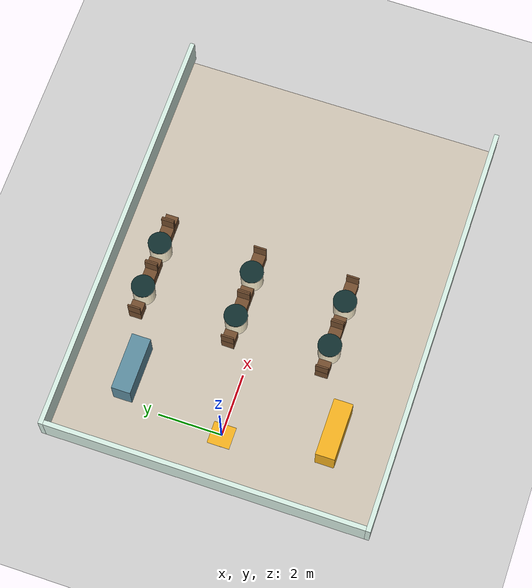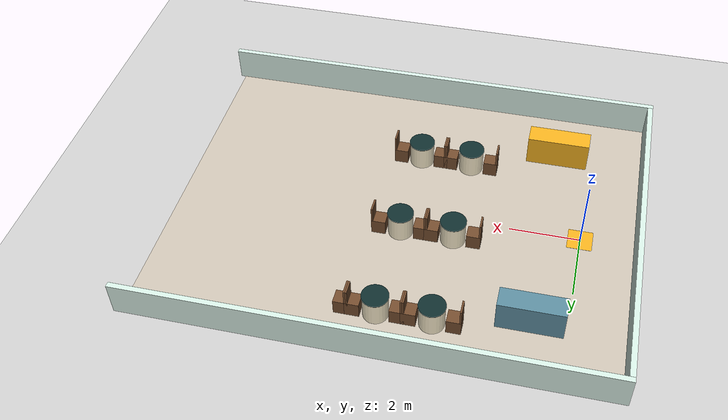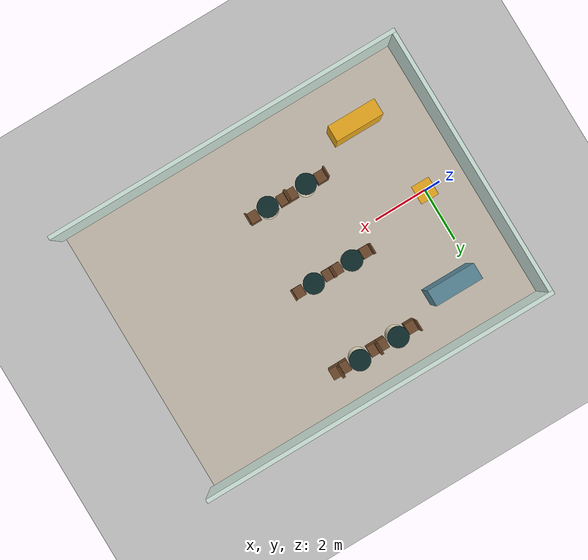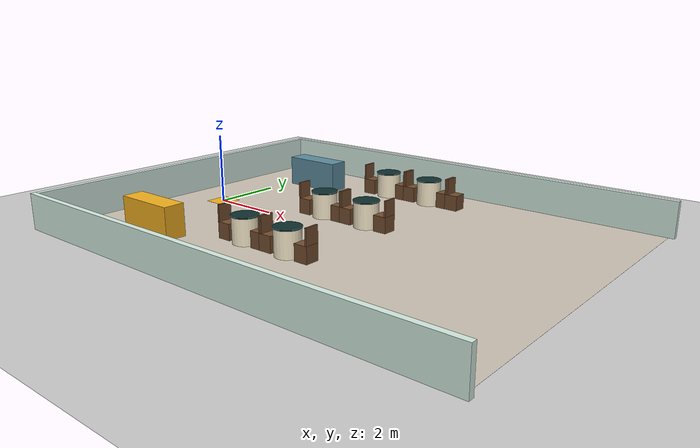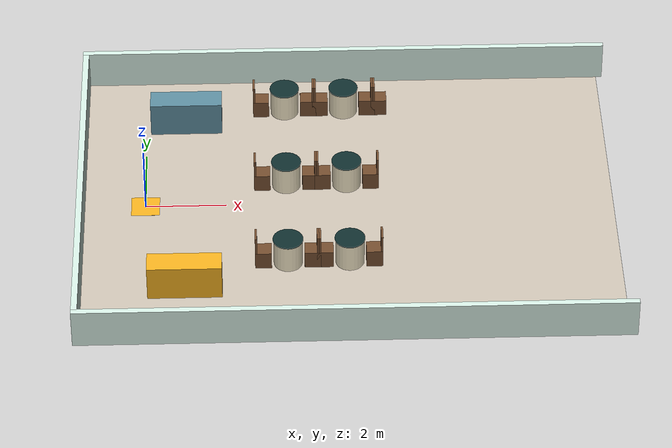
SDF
<sdf version="1.6">
 <world name="restaurante">
  <include><uri>model://sun</uri></include>
  <include><uri>model://ground_plane</uri></include>
  <model name="piso">
   <static>true</static>
   <pose>5.050 0.000 0.001 0 0 0</pose>
   <link name="link">
    <visual name="visual">
     <geometry><box><size>13.100 10.000 0.002</size></box></geometry>
     <material>
      <ambient>0.80 0.76 0.70 1</ambient>
      <diffuse>0.80 0.76 0.70 1</diffuse>
      <specular>0.1 0.1 0.1 1</specular>
     </material>
    </visual>
   </link>
  </model>
  <model name="parede_norte">
   <static>true</static>
   <pose>5.050 5.075 0 0 0 0.0000</pose>
   <link name="link">
    <collision name="colisao">
     <pose>0 0 0.500 0 0 0</pose>
     <geometry><box><size>13.400 0.150 1.000</size></box></geometry>
    </collision>
    <visual name="visual">
     <pose>0 0 0.500 0 0 0</pose>
     <geometry><box><size>13.400 0.150 1.000</size></box></geometry>
     <material>
      <ambient>0.84 0.93 0.89 1</ambient>
      <diffuse>0.84 0.93 0.89 1</diffuse>
      <specular>0.1 0.1 0.1 1</specular>
     </material>
    </visual>
   </link>
  </model>
  <model name="parede_sul">
   <static>true</static>
   <pose>5.050 -5.075 0 0 0 0.0000</pose>
   <link name="link">
    <collision name="colisao">
     <pose>0 0 0.500 0 0 0</pose>
     <geometry><box><size>13.400 0.150 1.000</size></box></geometry>
    </collision>
    <visual name="visual">
     <pose>0 0 0.500 0 0 0</pose>
     <geometry><box><size>13.400 0.150 1.000</size></box></geometry>
     <material>
      <ambient>0.84 0.93 0.89 1</ambient>
      <diffuse>0.84 0.93 0.89 1</diffuse>
      <specular>0.1 0.1 0.1 1</specular>
     </material>
    </visual>
   </link>
  </model>
  <model name="parede_oeste">
   <static>true</static>
   <pose>-1.575 0.000 0 0 0 0.0000</pose>
   <link name="link">
    <collision name="colisao">
     <pose>0 0 0.500 0 0 0</pose>
     <geometry><box><size>0.150 10.000 1.000</size></box></geometry>
    </collision>
    <visual name="visual">
     <pose>0 0 0.500 0 0 0</pose>
     <geometry><box><size>0.150 10.000 1.000</size></box></geometry>
     <material>
      <ambient>0.84 0.93 0.89 1</ambient>
      <diffuse>0.84 0.93 0.89 1</diffuse>
      <specular>0.1 0.1 0.1 1</specular>
     </material>
    </visual>
   </link>
  </model>
  <model name="mesa_1">
   <static>true</static>
   <pose>3.500 3.750 0 0 0 0</pose>
   <link name="link">
    <collision name="colisao">
     <pose>0 0 0.375 0 0 0</pose>
     <geometry><cylinder><radius>0.350</radius><length>0.750</length></cylinder></geometry>
    </collision>
    <visual name="toalha">
     <pose>0 0 0.360 0 0 0</pose>
     <geometry><cylinder><radius>0.350</radius><length>0.720</length></cylinder></geometry>
     <material>
      <ambient>0.99 0.94 0.81 1</ambient>
      <diffuse>0.99 0.94 0.81 1</diffuse>
      <specular>0.1 0.1 0.1 1</specular>
     </material>
    </visual>
    <visual name="tampo">
     <pose>0 0 0.735 0 0 0</pose>
     <geometry><cylinder><radius>0.370</radius><length>0.030</length></cylinder></geometry>
     <material>
      <ambient>0.06 0.18 0.18 1</ambient>
      <diffuse>0.06 0.18 0.18 1</diffuse>
      <specular>0.1 0.1 0.1 1</specular>
     </material>
    </visual>
   </link>
  </model>
  <model name="mesa_2">
   <static>true</static>
   <pose>5.000 3.750 0 0 0 0</pose>
   <link name="link">
    <collision name="colisao">
     <pose>0 0 0.375 0 0 0</pose>
     <geometry><cylinder><radius>0.350</radius><length>0.750</length></cylinder></geometry>
    </collision>
    <visual name="toalha">
     <pose>0 0 0.360 0 0 0</pose>
     <geometry><cylinder><radius>0.350</radius><length>0.720</length></cylinder></geometry>
     <material>
      <ambient>0.99 0.94 0.81 1</ambient>
      <diffuse>0.99 0.94 0.81 1</diffuse>
      <specular>0.1 0.1 0.1 1</specular>
     </material>
    </visual>
    <visual name="tampo">
     <pose>0 0 0.735 0 0 0</pose>
     <geometry><cylinder><radius>0.370</radius><length>0.030</length></cylinder></geometry>
     <material>
      <ambient>0.06 0.18 0.18 1</ambient>
      <diffuse>0.06 0.18 0.18 1</diffuse>
      <specular>0.1 0.1 0.1 1</specular>
     </material>
    </visual>
   </link>
  </model>
  <model name="mesa_6">
   <static>true</static>
   <pose>3.500 0.750 0 0 0 0</pose>
   <link name="link">
    <collision name="colisao">
     <pose>0 0 0.375 0 0 0</pose>
     <geometry><cylinder><radius>0.350</radius><length>0.750</length></cylinder></geometry>
    </collision>
    <visual name="toalha">
     <pose>0 0 0.360 0 0 0</pose>
     <geometry><cylinder><radius>0.350</radius><length>0.720</length></cylinder></geometry>
     <material>
      <ambient>0.99 0.94 0.81 1</ambient>
      <diffuse>0.99 0.94 0.81 1</diffuse>
      <specular>0.1 0.1 0.1 1</specular>
     </material>
    </visual>
    <visual name="tampo">
     <pose>0 0 0.735 0 0 0</pose>
     <geometry><cylinder><radius>0.370</radius><length>0.030</length></cylinder></geometry>
     <material>
      <ambient>0.06 0.18 0.18 1</ambient>
      <diffuse>0.06 0.18 0.18 1</diffuse>
      <specular>0.1 0.1 0.1 1</specular>
     </material>
    </visual>
   </link>
  </model>
  <model name="mesa_7">
   <static>true</static>
   <pose>5.000 0.750 0 0 0 0</pose>
   <link name="link">
    <collision name="colisao">
     <pose>0 0 0.375 0 0 0</pose>
     <geometry><cylinder><radius>0.350</radius><length>0.750</length></cylinder></geometry>
    </collision>
    <visual name="toalha">
     <pose>0 0 0.360 0 0 0</pose>
     <geometry><cylinder><radius>0.350</radius><length>0.720</length></cylinder></geometry>
     <material>
      <ambient>0.99 0.94 0.81 1</ambient>
      <diffuse>0.99 0.94 0.81 1</diffuse>
      <specular>0.1 0.1 0.1 1</specular>
     </material>
    </visual>
    <visual name="tampo">
     <pose>0 0 0.735 0 0 0</pose>
     <geometry><cylinder><radius>0.370</radius><length>0.030</length></cylinder></geometry>
     <material>
      <ambient>0.06 0.18 0.18 1</ambient>
      <diffuse>0.06 0.18 0.18 1</diffuse>
      <specular>0.1 0.1 0.1 1</specular>
     </material>
    </visual>
   </link>
  </model>
  <model name="mesa_11">
   <static>true</static>
   <pose>3.500 -2.250 0 0 0 0</pose>
   <link name="link">
    <collision name="colisao">
     <pose>0 0 0.375 0 0 0</pose>
     <geometry><cylinder><radius>0.350</radius><length>0.750</length></cylinder></geometry>
    </collision>
    <visual name="toalha">
     <pose>0 0 0.360 0 0 0</pose>
     <geometry><cylinder><radius>0.350</radius><length>0.720</length></cylinder></geometry>
     <material>
      <ambient>0.99 0.94 0.81 1</ambient>
      <diffuse>0.99 0.94 0.81 1</diffuse>
      <specular>0.1 0.1 0.1 1</specular>
     </material>
    </visual>
    <visual name="tampo">
     <pose>0 0 0.735 0 0 0</pose>
     <geometry><cylinder><radius>0.370</radius><length>0.030</length></cylinder></geometry>
     <material>
      <ambient>0.06 0.18 0.18 1</ambient>
      <diffuse>0.06 0.18 0.18 1</diffuse>
      <specular>0.1 0.1 0.1 1</specular>
     </material>
    </visual>
   </link>
  </model>
  <model name="mesa_12">
   <static>true</static>
   <pose>5.000 -2.250 0 0 0 0</pose>
   <link name="link">
    <collision name="colisao">
     <pose>0 0 0.375 0 0 0</pose>
     <geometry><cylinder><radius>0.350</radius><length>0.750</length></cylinder></geometry>
    </collision>
    <visual name="toalha">
     <pose>0 0 0.360 0 0 0</pose>
     <geometry><cylinder><radius>0.350</radius><length>0.720</length></cylinder></geometry>
     <material>
      <ambient>0.99 0.94 0.81 1</ambient>
      <diffuse>0.99 0.94 0.81 1</diffuse>
      <specular>0.1 0.1 0.1 1</specular>
     </material>
    </visual>
    <visual name="tampo">
     <pose>0 0 0.735 0 0 0</pose>
     <geometry><cylinder><radius>0.370</radius><length>0.030</length></cylinder></geometry>
     <material>
      <ambient>0.06 0.18 0.18 1</ambient>
      <diffuse>0.06 0.18 0.18 1</diffuse>
      <specular>0.1 0.1 0.1 1</specular>
     </material>
    </visual>
   </link>
  </model>
  <model name="cadeira_mesa_1_a">
   <static>true</static>
   <pose>2.900 3.750 0 0 0 0.0000</pose>
   <link name="link">
    <collision name="colisao">
     <pose>0 0 0.225 0 0 0</pose>
     <geometry><box><size>0.400 0.400 0.450</size></box></geometry>
    </collision>
    <visual name="assento">
     <pose>0 0 0.225 0 0 0</pose>
     <geometry><box><size>0.400 0.400 0.450</size></box></geometry>
     <material>
      <ambient>0.45 0.30 0.18 1</ambient>
      <diffuse>0.45 0.30 0.18 1</diffuse>
      <specular>0.1 0.1 0.1 1</specular>
     </material>
    </visual>
    <visual name="encosto">
     <pose>-0.175 0 0.675 0 0 0</pose>
     <geometry><box><size>0.050 0.400 0.450</size></box></geometry>
     <material>
      <ambient>0.45 0.30 0.18 1</ambient>
      <diffuse>0.45 0.30 0.18 1</diffuse>
      <specular>0.1 0.1 0.1 1</specular>
     </material>
    </visual>
   </link>
  </model>
  <model name="cadeira_mesa_1_b">
   <static>true</static>
   <pose>4.100 3.750 0 0 0 3.1416</pose>
   <link name="link">
    <collision name="colisao">
     <pose>0 0 0.225 0 0 0</pose>
     <geometry><box><size>0.400 0.400 0.450</size></box></geometry>
    </collision>
    <visual name="assento">
     <pose>0 0 0.225 0 0 0</pose>
     <geometry><box><size>0.400 0.400 0.450</size></box></geometry>
     <material>
      <ambient>0.45 0.30 0.18 1</ambient>
      <diffuse>0.45 0.30 0.18 1</diffuse>
      <specular>0.1 0.1 0.1 1</specular>
     </material>
    </visual>
    <visual name="encosto">
     <pose>-0.175 0 0.675 0 0 0</pose>
     <geometry><box><size>0.050 0.400 0.450</size></box></geometry>
     <material>
      <ambient>0.45 0.30 0.18 1</ambient>
      <diffuse>0.45 0.30 0.18 1</diffuse>
      <specular>0.1 0.1 0.1 1</specular>
     </material>
    </visual>
   </link>
  </model>
  <model name="cadeira_mesa_2_a">
   <static>true</static>
   <pose>4.400 3.750 0 0 0 0.0000</pose>
   <link name="link">
    <collision name="colisao">
     <pose>0 0 0.225 0 0 0</pose>
     <geometry><box><size>0.400 0.400 0.450</size></box></geometry>
    </collision>
    <visual name="assento">
     <pose>0 0 0.225 0 0 0</pose>
     <geometry><box><size>0.400 0.400 0.450</size></box></geometry>
     <material>
      <ambient>0.45 0.30 0.18 1</ambient>
      <diffuse>0.45 0.30 0.18 1</diffuse>
      <specular>0.1 0.1 0.1 1</specular>
     </material>
    </visual>
    <visual name="encosto">
     <pose>-0.175 0 0.675 0 0 0</pose>
     <geometry><box><size>0.050 0.400 0.450</size></box></geometry>
     <material>
      <ambient>0.45 0.30 0.18 1</ambient>
      <diffuse>0.45 0.30 0.18 1</diffuse>
      <specular>0.1 0.1 0.1 1</specular>
     </material>
    </visual>
   </link>
  </model>
  <model name="cadeira_mesa_2_b">
   <static>true</static>
   <pose>5.600 3.750 0 0 0 3.1416</pose>
   <link name="link">
    <collision name="colisao">
     <pose>0 0 0.225 0 0 0</pose>
     <geometry><box><size>0.400 0.400 0.450</size></box></geometry>
    </collision>
    <visual name="assento">
     <pose>0 0 0.225 0 0 0</pose>
     <geometry><box><size>0.400 0.400 0.450</size></box></geometry>
     <material>
      <ambient>0.45 0.30 0.18 1</ambient>
      <diffuse>0.45 0.30 0.18 1</diffuse>
      <specular>0.1 0.1 0.1 1</specular>
     </material>
    </visual>
    <visual name="encosto">
     <pose>-0.175 0 0.675 0 0 0</pose>
     <geometry><box><size>0.050 0.400 0.450</size></box></geometry>
     <material>
      <ambient>0.45 0.30 0.18 1</ambient>
      <diffuse>0.45 0.30 0.18 1</diffuse>
      <specular>0.1 0.1 0.1 1</specular>
     </material>
    </visual>
   </link>
  </model>
  <model name="cadeira_mesa_3_a">
   <static>true</static>
   <pose>5.900 3.750 0 0 0 0.0000</pose>
   <link name="link">
    <collision name="colisao">
     <pose>0 0 0.225 0 0 0</pose>
     <geometry><box><size>0.400 0.400 0.450</size></box></geometry>
    </collision>
    <visual name="assento">
     <pose>0 0 0.225 0 0 0</pose>
     <geometry><box><size>0.400 0.400 0.450</size></box></geometry>
     <material>
      <ambient>0.45 0.30 0.18 1</ambient>
      <diffuse>0.45 0.30 0.18 1</diffuse>
      <specular>0.1 0.1 0.1 1</specular>
     </material>
    </visual>
    <visual name="encosto">
     <pose>-0.175 0 0.675 0 0 0</pose>
     <geometry><box><size>0.050 0.400 0.450</size></box></geometry>
     <material>
      <ambient>0.45 0.30 0.18 1</ambient>
      <diffuse>0.45 0.30 0.18 1</diffuse>
      <specular>0.1 0.1 0.1 1</specular>
     </material>
    </visual>
   </link>
  </model>
  <model name="cadeira_mesa_6_a">
   <static>true</static>
   <pose>2.900 0.750 0 0 0 0.0000</pose>
   <link name="link">
    <collision name="colisao">
     <pose>0 0 0.225 0 0 0</pose>
     <geometry><box><size>0.400 0.400 0.450</size></box></geometry>
    </collision>
    <visual name="assento">
     <pose>0 0 0.225 0 0 0</pose>
     <geometry><box><size>0.400 0.400 0.450</size></box></geometry>
     <material>
      <ambient>0.45 0.30 0.18 1</ambient>
      <diffuse>0.45 0.30 0.18 1</diffuse>
      <specular>0.1 0.1 0.1 1</specular>
     </material>
    </visual>
    <visual name="encosto">
     <pose>-0.175 0 0.675 0 0 0</pose>
     <geometry><box><size>0.050 0.400 0.450</size></box></geometry>
     <material>
      <ambient>0.45 0.30 0.18 1</ambient>
      <diffuse>0.45 0.30 0.18 1</diffuse>
      <specular>0.1 0.1 0.1 1</specular>
     </material>
    </visual>
   </link>
  </model>
  <model name="cadeira_mesa_6_b">
   <static>true</static>
   <pose>4.100 0.750 0 0 0 3.1416</pose>
   <link name="link">
    <collision name="colisao">
     <pose>0 0 0.225 0 0 0</pose>
     <geometry><box><size>0.400 0.400 0.450</size></box></geometry>
    </collision>
    <visual name="assento">
     <pose>0 0 0.225 0 0 0</pose>
     <geometry><box><size>0.400 0.400 0.450</size></box></geometry>
     <material>
      <ambient>0.45 0.30 0.18 1</ambient>
      <diffuse>0.45 0.30 0.18 1</diffuse>
      <specular>0.1 0.1 0.1 1</specular>
     </material>
    </visual>
    <visual name="encosto">
     <pose>-0.175 0 0.675 0 0 0</pose>
     <geometry><box><size>0.050 0.400 0.450</size></box></geometry>
     <material>
      <ambient>0.45 0.30 0.18 1</ambient>
      <diffuse>0.45 0.30 0.18 1</diffuse>
      <specular>0.1 0.1 0.1 1</specular>
     </material>
    </visual>
   </link>
  </model>
  <model name="cadeira_mesa_7_a">
   <static>true</static>
   <pose>4.400 0.750 0 0 0 0.0000</pose>
   <link name="link">
    <collision name="colisao">
     <pose>0 0 0.225 0 0 0</pose>
     <geometry><box><size>0.400 0.400 0.450</size></box></geometry>
    </collision>
    <visual name="assento">
     <pose>0 0 0.225 0 0 0</pose>
     <geometry><box><size>0.400 0.400 0.450</size></box></geometry>
     <material>
      <ambient>0.45 0.30 0.18 1</ambient>
      <diffuse>0.45 0.30 0.18 1</diffuse>
      <specular>0.1 0.1 0.1 1</specular>
     </material>
    </visual>
    <visual name="encosto">
     <pose>-0.175 0 0.675 0 0 0</pose>
     <geometry><box><size>0.050 0.400 0.450</size></box></geometry>
     <material>
      <ambient>0.45 0.30 0.18 1</ambient>
      <diffuse>0.45 0.30 0.18 1</diffuse>
      <specular>0.1 0.1 0.1 1</specular>
     </material>
    </visual>
   </link>
  </model>
  <model name="cadeira_mesa_7_b">
   <static>true</static>
   <pose>5.600 0.750 0 0 0 3.1416</pose>
   <link name="link">
    <collision name="colisao">
     <pose>0 0 0.225 0 0 0</pose>
     <geometry><box><size>0.400 0.400 0.450</size></box></geometry>
    </collision>
    <visual name="assento">
     <pose>0 0 0.225 0 0 0</pose>
     <geometry><box><size>0.400 0.400 0.450</size></box></geometry>
     <material>
      <ambient>0.45 0.30 0.18 1</ambient>
      <diffuse>0.45 0.30 0.18 1</diffuse>
      <specular>0.1 0.1 0.1 1</specular>
     </material>
    </visual>
    <visual name="encosto">
     <pose>-0.175 0 0.675 0 0 0</pose>
     <geometry><box><size>0.050 0.400 0.450</size></box></geometry>
     <material>
      <ambient>0.45 0.30 0.18 1</ambient>
      <diffuse>0.45 0.30 0.18 1</diffuse>
      <specular>0.1 0.1 0.1 1</specular>
     </material>
    </visual>
   </link>
  </model>
  <model name="cadeira_mesa_11_a">
   <static>true</static>
   <pose>2.900 -2.250 0 0 0 0.0000</pose>
   <link name="link">
    <collision name="colisao">
     <pose>0 0 0.225 0 0 0</pose>
     <geometry><box><size>0.400 0.400 0.450</size></box></geometry>
    </collision>
    <visual name="assento">
     <pose>0 0 0.225 0 0 0</pose>
     <geometry><box><size>0.400 0.400 0.450</size></box></geometry>
     <material>
      <ambient>0.45 0.30 0.18 1</ambient>
      <diffuse>0.45 0.30 0.18 1</diffuse>
      <specular>0.1 0.1 0.1 1</specular>
     </material>
    </visual>
    <visual name="encosto">
     <pose>-0.175 0 0.675 0 0 0</pose>
     <geometry><box><size>0.050 0.400 0.450</size></box></geometry>
     <material>
      <ambient>0.45 0.30 0.18 1</ambient>
      <diffuse>0.45 0.30 0.18 1</diffuse>
      <specular>0.1 0.1 0.1 1</specular>
     </material>
    </visual>
   </link>
  </model>
  <model name="cadeira_mesa_11_b">
   <static>true</static>
   <pose>4.100 -2.250 0 0 0 3.1416</pose>
   <link name="link">
    <collision name="colisao">
     <pose>0 0 0.225 0 0 0</pose>
     <geometry><box><size>0.400 0.400 0.450</size></box></geometry>
    </collision>
    <visual name="assento">
     <pose>0 0 0.225 0 0 0</pose>
     <geometry><box><size>0.400 0.400 0.450</size></box></geometry>
     <material>
      <ambient>0.45 0.30 0.18 1</ambient>
      <diffuse>0.45 0.30 0.18 1</diffuse>
      <specular>0.1 0.1 0.1 1</specular>
     </material>
    </visual>
    <visual name="encosto">
     <pose>-0.175 0 0.675 0 0 0</pose>
     <geometry><box><size>0.050 0.400 0.450</size></box></geometry>
     <material>
      <ambient>0.45 0.30 0.18 1</ambient>
      <diffuse>0.45 0.30 0.18 1</diffuse>
      <specular>0.1 0.1 0.1 1</specular>
     </material>
    </visual>
   </link>
  </model>
  <model name="cadeira_mesa_12_a">
   <static>true</static>
   <pose>4.400 -2.250 0 0 0 0.0000</pose>
   <link name="link">
    <collision name="colisao">
     <pose>0 0 0.225 0 0 0</pose>
     <geometry><box><size>0.400 0.400 0.450</size></box></geometry>
    </collision>
    <visual name="assento">
     <pose>0 0 0.225 0 0 0</pose>
     <geometry><box><size>0.400 0.400 0.450</size></box></geometry>
     <material>
      <ambient>0.45 0.30 0.18 1</ambient>
      <diffuse>0.45 0.30 0.18 1</diffuse>
      <specular>0.1 0.1 0.1 1</specular>
     </material>
    </visual>
    <visual name="encosto">
     <pose>-0.175 0 0.675 0 0 0</pose>
     <geometry><box><size>0.050 0.400 0.450</size></box></geometry>
     <material>
      <ambient>0.45 0.30 0.18 1</ambient>
      <diffuse>0.45 0.30 0.18 1</diffuse>
      <specular>0.1 0.1 0.1 1</specular>
     </material>
    </visual>
   </link>
  </model>
  <model name="cadeira_mesa_12_b">
   <static>true</static>
   <pose>5.600 -2.250 0 0 0 3.1416</pose>
   <link name="link">
    <collision name="colisao">
     <pose>0 0 0.225 0 0 0</pose>
     <geometry><box><size>0.400 0.400 0.450</size></box></geometry>
    </collision>
    <visual name="assento">
     <pose>0 0 0.225 0 0 0</pose>
     <geometry><box><size>0.400 0.400 0.450</size></box></geometry>
     <material>
      <ambient>0.45 0.30 0.18 1</ambient>
      <diffuse>0.45 0.30 0.18 1</diffuse>
      <specular>0.1 0.1 0.1 1</specular>
     </material>
    </visual>
    <visual name="encosto">
     <pose>-0.175 0 0.675 0 0 0</pose>
     <geometry><box><size>0.050 0.400 0.450</size></box></geometry>
     <material>
      <ambient>0.45 0.30 0.18 1</ambient>
      <diffuse>0.45 0.30 0.18 1</diffuse>
      <specular>0.1 0.1 0.1 1</specular>
     </material>
    </visual>
   </link>
  </model>
  <model name="bancada_estacao_cafe">
   <static>true</static>
   <pose>1.000 3.200 0 0 0 3.1416</pose>
   <link name="link">
    <collision name="colisao">
     <pose>0 0 0.450 0 0 0</pose>
     <geometry><box><size>1.800 0.600 0.900</size></box></geometry>
    </collision>
    <visual name="visual">
     <pose>0 0 0.450 0 0 0</pose>
     <geometry><box><size>1.800 0.600 0.900</size></box></geometry>
     <material>
      <ambient>0.36 0.55 0.62 1</ambient>
      <diffuse>0.36 0.55 0.62 1</diffuse>
      <specular>0.1 0.1 0.1 1</specular>
     </material>
    </visual>
   </link>
  </model>
  <model name="bancada_estacao_croissant">
   <static>true</static>
   <pose>1.000 -3.200 0 0 0 -0.0000</pose>
   <link name="link">
    <collision name="colisao">
     <pose>0 0 0.450 0 0 0</pose>
     <geometry><box><size>1.800 0.600 0.900</size></box></geometry>
    </collision>
    <visual name="visual">
     <pose>0 0 0.450 0 0 0</pose>
     <geometry><box><size>1.800 0.600 0.900</size></box></geometry>
     <material>
      <ambient>0.95 0.69 0.12 1</ambient>
      <diffuse>0.95 0.69 0.12 1</diffuse>
      <specular>0.1 0.1 0.1 1</specular>
     </material>
    </visual>
   </link>
  </model>
  <model name="base_do_robo">
   <static>true</static>
   <pose>0.000 0.000 0.002 0 0 0</pose>
   <link name="link">
    <visual name="marca">
     <geometry><box><size>0.700 0.700 0.004</size></box></geometry>
     <material>
      <ambient>0.95 0.69 0.12 1</ambient>
      <diffuse>0.95 0.69 0.12 1</diffuse>
      <specular>0.1 0.1 0.1 1</specular>
     </material>
    </visual>
   </link>
  </model>
 </world>
</sdf>
